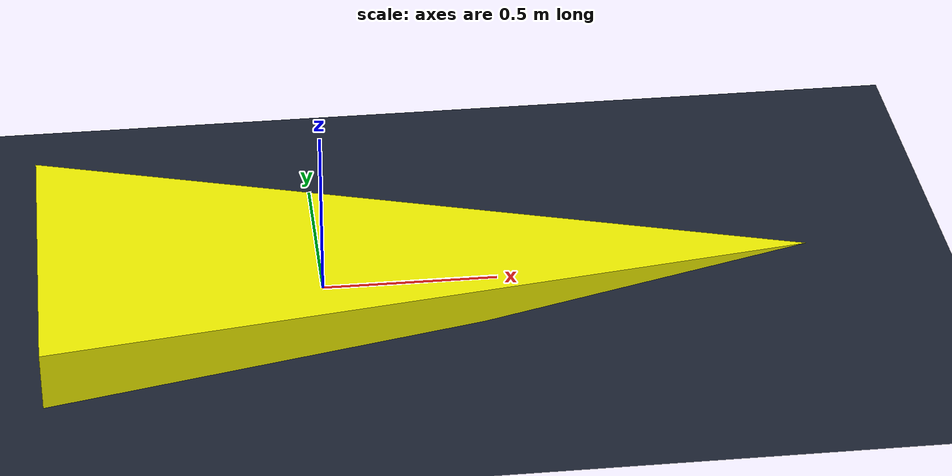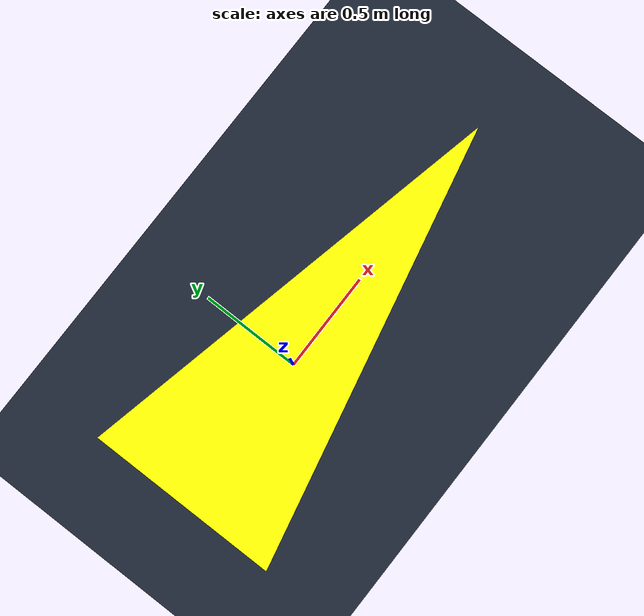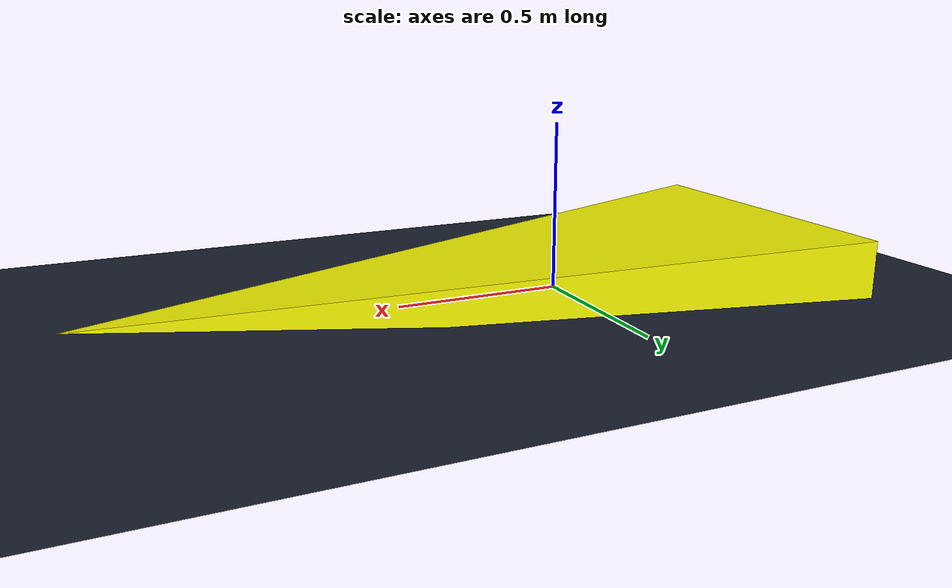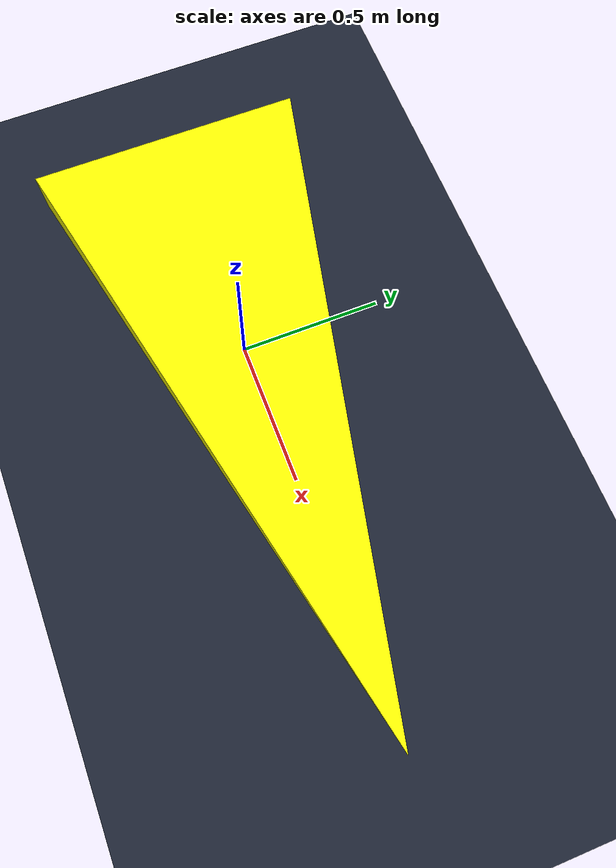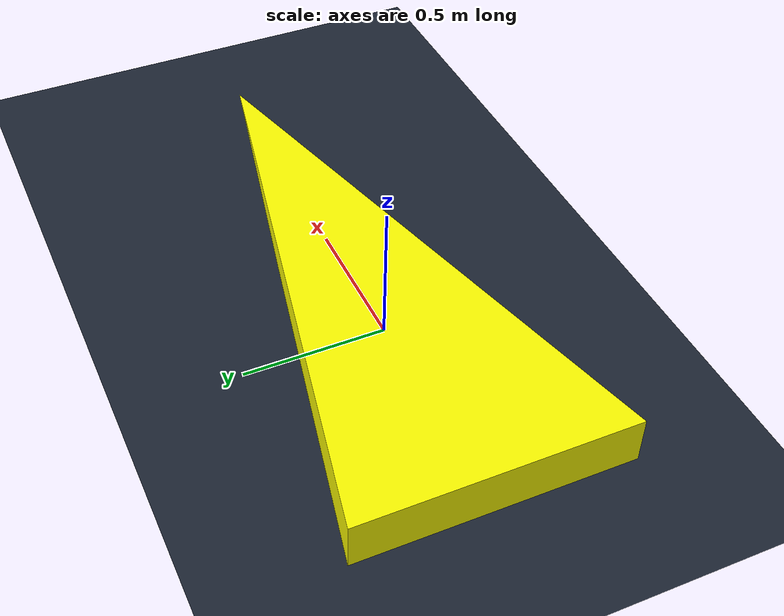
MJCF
<mujoco>
    <compiler inertiafromgeom="true" angle="degree" coordinate="local"/>

    <option timestep="0.02" integrator="RK4"/>

    <default>
        <joint limited="false" armature="0" damping="0"/>
        <geom condim="3" conaffinity="0" margin="0" friction="1 0.5 0.5" density="100" material="self"/>
    </default>

    <asset>
        <texture type="skybox" builtin="gradient" width="100" height="100" rgb1="1 1 1" rgb2="0 0 0"/>
        <texture name="grid" type="2d" builtin="checker" rgb1=".08 .11 .16" rgb2=".15 .18 .25" width="300" height="300"/>
        <texture name="texgeom" type="cube" builtin="flat" mark="cross" width="127" height="1278" rgb1="0.8 0.6 0.4" rgb2="0.8 0.6 0.4" markrgb="1 1 1" random="0.01"/>
        <texture name="teleport_in" type="2d" builtin="gradient" rgb1=".1 .1 .1" rgb2="0.35 0.55 0.91" width="300" height="300"/>
        <texture name="teleport_out" type="2d" builtin="gradient" rgb1=".9 .9 .9" rgb2="0.35 0.55 0.91" width="300" height="300"/>
        <mesh name="agent_pyramid" vertex="1.40 0 0.00  -0.80 0.48 0.12  -0.80 -0.48 0.12  -0.80 -0.48 -0.12  -0.80 0.48 -0.12" face="0 1 2  0 2 3  0 3 4  0 4 1  1 2 3  1 3 4"/>
        <material name="grid" texture="grid" texrepeat="1 1" texuniform="true"/>
        <material name="self" rgba=".7 .5 .3 1"/>
        <material name="geom" texture="texgeom" texuniform="true"/>
        <material name="wall" rgba="1 1 1 1"/>
        <material name="target" rgba="0.96 0.26 0.33 1"/>
        <material name="teleport_in" texture="teleport_in"/>
        <material name="teleport_out" texture="teleport_out"/>
    </asset>

    <worldbody>
        <light name="global" directional="true" cutoff="100" exponent="1" ambient=".2 .2 .2" diffuse="1 1 1" specular=".1 .1 .1" pos="0 0 1.3" dir="-0 0 -1.3"/>
        <geom name="floor" pos="0 0 0" size="100 100 .2" type="plane" conaffinity="1" condim="3" material="grid"/>
        <body name="torso" pos="0 0 0">
            <geom name="pointbody" type="sphere" size="0.7" pos="0 0 0.7" group="3" rgba="0 0 0 0"/>
            <joint name="ballx" type="slide" axis="1 0 0" pos="0 0 0"/>
            <joint name="bally" type="slide" axis="0 1 0" pos="0 0 0"/>
            <light name="torso_light" pos="0 0 8" mode="trackcom"/>
        </body>
        <body name="agent_marker" mocap="true" pos="0 0 0.05">
            <geom name="agent_marker_geom" type="mesh" mesh="agent_pyramid" group="0" rgba="1 1 0 1"/>
        </body>
    </worldbody>

    <actuator>
        <motor joint="ballx" ctrlrange="-1 1" ctrllimited="true"/>
        <motor joint="bally" ctrlrange="-1 1" ctrllimited="true"/>
    </actuator>
</mujoco>
